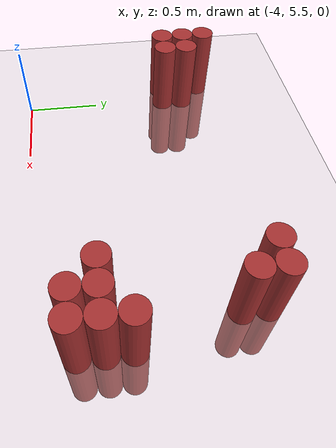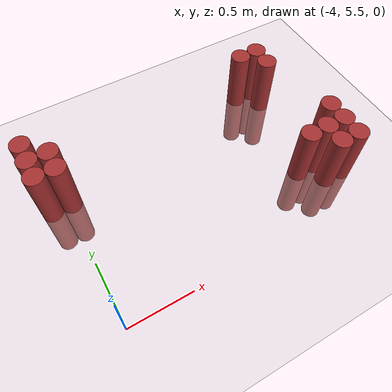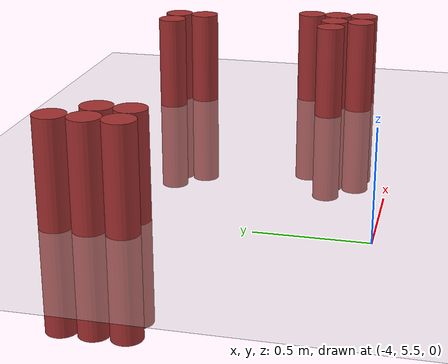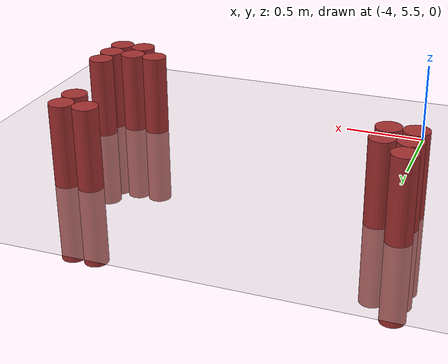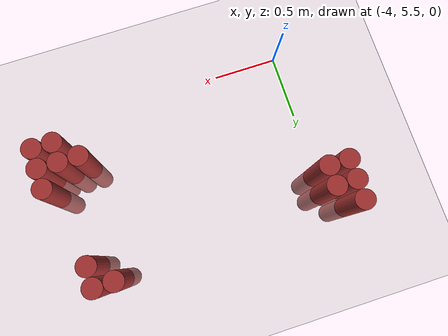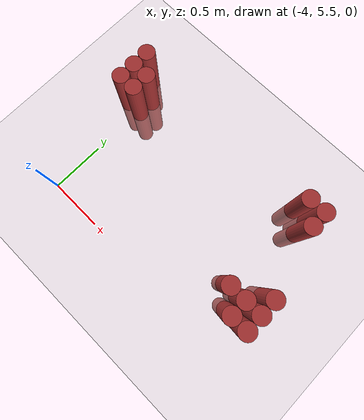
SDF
<sdf version="1.6">
 <world name="default">
  <model name="ground_plane">
   <static>1</static>
   <link name="link">
    <collision name="collision">
     <geometry><plane><normal>0 0 1</normal><size>100 100</size></plane></geometry>
     <surface><friction><ode><mu>100</mu><mu2>50</mu2></ode></friction></surface>
    </collision>
    <visual name="visual">
     <cast_shadows>0</cast_shadows>
     <geometry><plane><normal>0 0 1</normal><size>100 100</size></plane></geometry>
     <material>
      <script><uri>file://media/materials/scripts/gazebo.material</uri><name>Gazebo/Grey</name></script>
     </material>
    </visual>
   </link>
  </model>
  <model name="unit_cylinder_135">
   <static>1</static>
   <pose>-4.125000 6.525000 0.000000 0.000000 0.000000 0.000000</pose>
   <link name="link">
    <inertial>
     <mass>1</mass>
     <inertia><ixx>0.145833</ixx><ixy>0</ixy><ixz>0</ixz><iyy>0.145833</iyy><iyz>0</iyz><izz>0.125</izz></inertia>
    </inertial>
    <collision name="collision">
     <geometry><cylinder><radius>0.075000</radius><length>1</length></cylinder></geometry>
    </collision>
    <visual name="visual">
     <geometry><cylinder><radius>0.075000</radius><length>1</length></cylinder></geometry>
     <material>
      <ambient>0.648000 0.192000 0.192000 1</ambient>
      <diffuse>0.648000 0.192000 0.192000 1</diffuse>
     </material>
     <material>
      <script><name>Gazebo/Grey</name><uri>file://media/materials/scripts/gazebo.material</uri></script>
     </material>
    </visual>
   </link>
  </model>
  <model name="unit_cylinder_136">
   <static>1</static>
   <pose>-4.125000 6.675000 0.000000 0.000000 0.000000 0.000000</pose>
   <link name="link">
    <inertial>
     <mass>1</mass>
     <inertia><ixx>0.145833</ixx><ixy>0</ixy><ixz>0</ixz><iyy>0.145833</iyy><iyz>0</iyz><izz>0.125</izz></inertia>
    </inertial>
    <collision name="collision">
     <geometry><cylinder><radius>0.075000</radius><length>1</length></cylinder></geometry>
    </collision>
    <visual name="visual">
     <geometry><cylinder><radius>0.075000</radius><length>1</length></cylinder></geometry>
     <material>
      <ambient>0.648000 0.192000 0.192000 1</ambient>
      <diffuse>0.648000 0.192000 0.192000 1</diffuse>
     </material>
     <material>
      <script><name>Gazebo/Grey</name><uri>file://media/materials/scripts/gazebo.material</uri></script>
     </material>
    </visual>
   </link>
  </model>
  <model name="unit_cylinder_137">
   <static>1</static>
   <pose>-4.125000 6.825000 0.000000 0.000000 0.000000 0.000000</pose>
   <link name="link">
    <inertial>
     <mass>1</mass>
     <inertia><ixx>0.145833</ixx><ixy>0</ixy><ixz>0</ixz><iyy>0.145833</iyy><iyz>0</iyz><izz>0.125</izz></inertia>
    </inertial>
    <collision name="collision">
     <geometry><cylinder><radius>0.075000</radius><length>1</length></cylinder></geometry>
    </collision>
    <visual name="visual">
     <geometry><cylinder><radius>0.075000</radius><length>1</length></cylinder></geometry>
     <material>
      <ambient>0.648000 0.192000 0.192000 1</ambient>
      <diffuse>0.648000 0.192000 0.192000 1</diffuse>
     </material>
     <material>
      <script><name>Gazebo/Grey</name><uri>file://media/materials/scripts/gazebo.material</uri></script>
     </material>
    </visual>
   </link>
  </model>
  <model name="unit_cylinder_138">
   <static>1</static>
   <pose>-3.975000 6.525000 0.000000 0.000000 0.000000 0.000000</pose>
   <link name="link">
    <inertial>
     <mass>1</mass>
     <inertia><ixx>0.145833</ixx><ixy>0</ixy><ixz>0</ixz><iyy>0.145833</iyy><iyz>0</iyz><izz>0.125</izz></inertia>
    </inertial>
    <collision name="collision">
     <geometry><cylinder><radius>0.075000</radius><length>1</length></cylinder></geometry>
    </collision>
    <visual name="visual">
     <geometry><cylinder><radius>0.075000</radius><length>1</length></cylinder></geometry>
     <material>
      <ambient>0.648000 0.192000 0.192000 1</ambient>
      <diffuse>0.648000 0.192000 0.192000 1</diffuse>
     </material>
     <material>
      <script><name>Gazebo/Grey</name><uri>file://media/materials/scripts/gazebo.material</uri></script>
     </material>
    </visual>
   </link>
  </model>
  <model name="unit_cylinder_139">
   <static>1</static>
   <pose>-3.975000 6.675000 0.000000 0.000000 0.000000 0.000000</pose>
   <link name="link">
    <inertial>
     <mass>1</mass>
     <inertia><ixx>0.145833</ixx><ixy>0</ixy><ixz>0</ixz><iyy>0.145833</iyy><iyz>0</iyz><izz>0.125</izz></inertia>
    </inertial>
    <collision name="collision">
     <geometry><cylinder><radius>0.075000</radius><length>1</length></cylinder></geometry>
    </collision>
    <visual name="visual">
     <geometry><cylinder><radius>0.075000</radius><length>1</length></cylinder></geometry>
     <material>
      <ambient>0.648000 0.192000 0.192000 1</ambient>
      <diffuse>0.648000 0.192000 0.192000 1</diffuse>
     </material>
     <material>
      <script><name>Gazebo/Grey</name><uri>file://media/materials/scripts/gazebo.material</uri></script>
     </material>
    </visual>
   </link>
  </model>
  <model name="unit_cylinder_149">
   <static>1</static>
   <pose>-2.325000 5.925000 0.000000 0.000000 0.000000 0.000000</pose>
   <link name="link">
    <inertial>
     <mass>1</mass>
     <inertia><ixx>0.145833</ixx><ixy>0</ixy><ixz>0</ixz><iyy>0.145833</iyy><iyz>0</iyz><izz>0.125</izz></inertia>
    </inertial>
    <collision name="collision">
     <geometry><cylinder><radius>0.075000</radius><length>1</length></cylinder></geometry>
    </collision>
    <visual name="visual">
     <geometry><cylinder><radius>0.075000</radius><length>1</length></cylinder></geometry>
     <material>
      <ambient>0.648000 0.192000 0.192000 1</ambient>
      <diffuse>0.648000 0.192000 0.192000 1</diffuse>
     </material>
     <material>
      <script><name>Gazebo/Grey</name><uri>file://media/materials/scripts/gazebo.material</uri></script>
     </material>
    </visual>
   </link>
  </model>
  <model name="unit_cylinder_150">
   <static>1</static>
   <pose>-2.325000 6.825000 0.000000 0.000000 0.000000 0.000000</pose>
   <link name="link">
    <inertial>
     <mass>1</mass>
     <inertia><ixx>0.145833</ixx><ixy>0</ixy><ixz>0</ixz><iyy>0.145833</iyy><iyz>0</iyz><izz>0.125</izz></inertia>
    </inertial>
    <collision name="collision">
     <geometry><cylinder><radius>0.075000</radius><length>1</length></cylinder></geometry>
    </collision>
    <visual name="visual">
     <geometry><cylinder><radius>0.075000</radius><length>1</length></cylinder></geometry>
     <material>
      <ambient>0.648000 0.192000 0.192000 1</ambient>
      <diffuse>0.648000 0.192000 0.192000 1</diffuse>
     </material>
     <material>
      <script><name>Gazebo/Grey</name><uri>file://media/materials/scripts/gazebo.material</uri></script>
     </material>
    </visual>
   </link>
  </model>
  <model name="unit_cylinder_152">
   <static>1</static>
   <pose>-2.175000 5.775000 0.000000 0.000000 0.000000 0.000000</pose>
   <link name="link">
    <inertial>
     <mass>1</mass>
     <inertia><ixx>0.145833</ixx><ixy>0</ixy><ixz>0</ixz><iyy>0.145833</iyy><iyz>0</iyz><izz>0.125</izz></inertia>
    </inertial>
    <collision name="collision">
     <geometry><cylinder><radius>0.075000</radius><length>1</length></cylinder></geometry>
    </collision>
    <visual name="visual">
     <geometry><cylinder><radius>0.075000</radius><length>1</length></cylinder></geometry>
     <material>
      <ambient>0.648000 0.192000 0.192000 1</ambient>
      <diffuse>0.648000 0.192000 0.192000 1</diffuse>
     </material>
     <material>
      <script><name>Gazebo/Grey</name><uri>file://media/materials/scripts/gazebo.material</uri></script>
     </material>
    </visual>
   </link>
  </model>
  <model name="unit_cylinder_153">
   <static>1</static>
   <pose>-2.175000 5.925000 0.000000 0.000000 0.000000 0.000000</pose>
   <link name="link">
    <inertial>
     <mass>1</mass>
     <inertia><ixx>0.145833</ixx><ixy>0</ixy><ixz>0</ixz><iyy>0.145833</iyy><iyz>0</iyz><izz>0.125</izz></inertia>
    </inertial>
    <collision name="collision">
     <geometry><cylinder><radius>0.075000</radius><length>1</length></cylinder></geometry>
    </collision>
    <visual name="visual">
     <geometry><cylinder><radius>0.075000</radius><length>1</length></cylinder></geometry>
     <material>
      <ambient>0.648000 0.192000 0.192000 1</ambient>
      <diffuse>0.648000 0.192000 0.192000 1</diffuse>
     </material>
     <material>
      <script><name>Gazebo/Grey</name><uri>file://media/materials/scripts/gazebo.material</uri></script>
     </material>
    </visual>
   </link>
  </model>
  <model name="unit_cylinder_154">
   <static>1</static>
   <pose>-2.175000 6.675000 0.000000 0.000000 0.000000 0.000000</pose>
   <link name="link">
    <inertial>
     <mass>1</mass>
     <inertia><ixx>0.145833</ixx><ixy>0</ixy><ixz>0</ixz><iyy>0.145833</iyy><iyz>0</iyz><izz>0.125</izz></inertia>
    </inertial>
    <collision name="collision">
     <geometry><cylinder><radius>0.075000</radius><length>1</length></cylinder></geometry>
    </collision>
    <visual name="visual">
     <geometry><cylinder><radius>0.075000</radius><length>1</length></cylinder></geometry>
     <material>
      <ambient>0.648000 0.192000 0.192000 1</ambient>
      <diffuse>0.648000 0.192000 0.192000 1</diffuse>
     </material>
     <material>
      <script><name>Gazebo/Grey</name><uri>file://media/materials/scripts/gazebo.material</uri></script>
     </material>
    </visual>
   </link>
  </model>
  <model name="unit_cylinder_155">
   <static>1</static>
   <pose>-2.175000 6.825000 0.000000 0.000000 0.000000 0.000000</pose>
   <link name="link">
    <inertial>
     <mass>1</mass>
     <inertia><ixx>0.145833</ixx><ixy>0</ixy><ixz>0</ixz><iyy>0.145833</iyy><iyz>0</iyz><izz>0.125</izz></inertia>
    </inertial>
    <collision name="collision">
     <geometry><cylinder><radius>0.075000</radius><length>1</length></cylinder></geometry>
    </collision>
    <visual name="visual">
     <geometry><cylinder><radius>0.075000</radius><length>1</length></cylinder></geometry>
     <material>
      <ambient>0.648000 0.192000 0.192000 1</ambient>
      <diffuse>0.648000 0.192000 0.192000 1</diffuse>
     </material>
     <material>
      <script><name>Gazebo/Grey</name><uri>file://media/materials/scripts/gazebo.material</uri></script>
     </material>
    </visual>
   </link>
  </model>
  <model name="unit_cylinder_158">
   <static>1</static>
   <pose>-2.025000 5.775000 0.000000 0.000000 0.000000 0.000000</pose>
   <link name="link">
    <inertial>
     <mass>1</mass>
     <inertia><ixx>0.145833</ixx><ixy>0</ixy><ixz>0</ixz><iyy>0.145833</iyy><iyz>0</iyz><izz>0.125</izz></inertia>
    </inertial>
    <collision name="collision">
     <geometry><cylinder><radius>0.075000</radius><length>1</length></cylinder></geometry>
    </collision>
    <visual name="visual">
     <geometry><cylinder><radius>0.075000</radius><length>1</length></cylinder></geometry>
     <material>
      <ambient>0.648000 0.192000 0.192000 1</ambient>
      <diffuse>0.648000 0.192000 0.192000 1</diffuse>
     </material>
     <material>
      <script><name>Gazebo/Grey</name><uri>file://media/materials/scripts/gazebo.material</uri></script>
     </material>
    </visual>
   </link>
  </model>
  <model name="unit_cylinder_159">
   <static>1</static>
   <pose>-2.025000 5.925000 0.000000 0.000000 0.000000 0.000000</pose>
   <link name="link">
    <inertial>
     <mass>1</mass>
     <inertia><ixx>0.145833</ixx><ixy>0</ixy><ixz>0</ixz><iyy>0.145833</iyy><iyz>0</iyz><izz>0.125</izz></inertia>
    </inertial>
    <collision name="collision">
     <geometry><cylinder><radius>0.075000</radius><length>1</length></cylinder></geometry>
    </collision>
    <visual name="visual">
     <geometry><cylinder><radius>0.075000</radius><length>1</length></cylinder></geometry>
     <material>
      <ambient>0.648000 0.192000 0.192000 1</ambient>
      <diffuse>0.648000 0.192000 0.192000 1</diffuse>
     </material>
     <material>
      <script><name>Gazebo/Grey</name><uri>file://media/materials/scripts/gazebo.material</uri></script>
     </material>
    </visual>
   </link>
  </model>
  <model name="unit_cylinder_160">
   <static>1</static>
   <pose>-2.025000 6.075000 0.000000 0.000000 0.000000 0.000000</pose>
   <link name="link">
    <inertial>
     <mass>1</mass>
     <inertia><ixx>0.145833</ixx><ixy>0</ixy><ixz>0</ixz><iyy>0.145833</iyy><iyz>0</iyz><izz>0.125</izz></inertia>
    </inertial>
    <collision name="collision">
     <geometry><cylinder><radius>0.075000</radius><length>1</length></cylinder></geometry>
    </collision>
    <visual name="visual">
     <geometry><cylinder><radius>0.075000</radius><length>1</length></cylinder></geometry>
     <material>
      <ambient>0.648000 0.192000 0.192000 1</ambient>
      <diffuse>0.648000 0.192000 0.192000 1</diffuse>
     </material>
     <material>
      <script><name>Gazebo/Grey</name><uri>file://media/materials/scripts/gazebo.material</uri></script>
     </material>
    </visual>
   </link>
  </model>
 </world>
</sdf>
